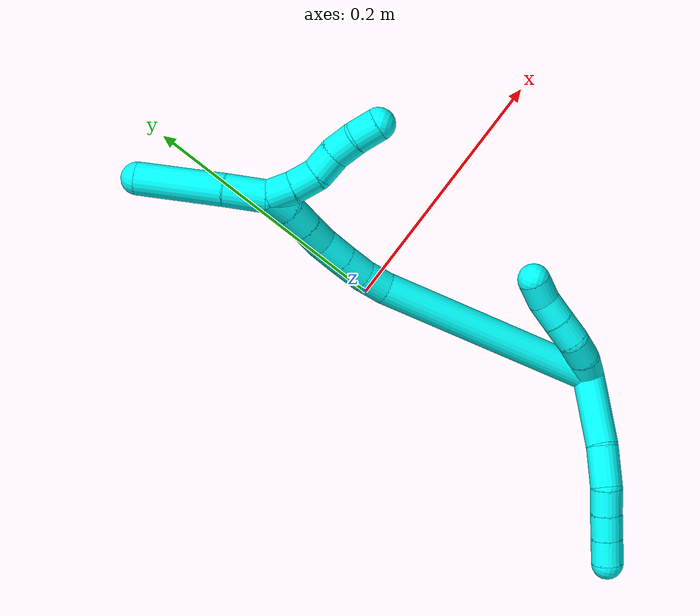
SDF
<sdf version="1.7">
 <world name="default">
  <model name="3">
   <static>0</static>
   <link name="3">
    <collision name="collision-cylinder-e_1_2_8">
     <pose>-0.022593 -0.011159 0.013337 0.69669 -0.914814 -0.353769</pose>
     <geometry><cylinder><radius>0.0125</radius><length>0.057022</length></cylinder></geometry>
     <surface>
      <friction><ode><mu>1.16</mu><mu2>1.16</mu2><slip1>0</slip1><slip2>0</slip2></ode></friction>
      <contact><ode><kp>1e+06</kp><kd>1</kd><max_vel>0</max_vel><min_depth>0.001</min_depth></ode></contact>
     </surface>
    </collision>
    <visual name="visual-cylinder-e_1_2_8">
     <pose>-0.022593 -0.011159 0.013337 0.69669 -0.914814 -0.353769</pose>
     <geometry><cylinder><radius>0.0125</radius><length>0.057022</length></cylinder></geometry>
     <material><ambient>0.003922 1 0.996078 1</ambient></material>
    </visual>
    <collision name="collision-cylinder-e_2_8_9">
     <pose>-0.057067 -0.031076 0.032882 0.954265 -0.835969 -0.451409</pose>
     <geometry><cylinder><radius>0.0125</radius><length>0.032024</length></cylinder></geometry>
     <surface>
      <friction><ode><mu>1.16</mu><mu2>1.16</mu2><slip1>0</slip1><slip2>0</slip2></ode></friction>
      <contact><ode><kp>1e+06</kp><kd>1</kd><max_vel>0</max_vel><min_depth>0.001</min_depth></ode></contact>
     </surface>
    </collision>
    <visual name="visual-cylinder-e_2_8_9">
     <pose>-0.057067 -0.031076 0.032882 0.954265 -0.835969 -0.451409</pose>
     <geometry><cylinder><radius>0.0125</radius><length>0.032024</length></cylinder></geometry>
     <material><ambient>0.003922 1 0.996078 1</ambient></material>
    </visual>
    <collision name="collision-cylinder-e_3_9_10">
     <pose>-0.074591 -0.048008 0.041844 1.24577 -0.579529 -0.421942</pose>
     <geometry><cylinder><radius>0.0125</radius><length>0.020615</length></cylinder></geometry>
     <surface>
      <friction><ode><mu>1.16</mu><mu2>1.16</mu2><slip1>0</slip1><slip2>0</slip2></ode></friction>
      <contact><ode><kp>1e+06</kp><kd>1</kd><max_vel>0</max_vel><min_depth>0.001</min_depth></ode></contact>
     </surface>
    </collision>
    <visual name="visual-cylinder-e_3_9_10">
     <pose>-0.074591 -0.048008 0.041844 1.24577 -0.579529 -0.421942</pose>
     <geometry><cylinder><radius>0.0125</radius><length>0.020615</length></cylinder></geometry>
     <material><ambient>0.003922 1 0.996078 1</ambient></material>
    </visual>
    <collision name="collision-cylinder-e_4_10_11">
     <pose>-0.085746 -0.064107 0.047512 1.21846 -0.578137 -0.409225</pose>
     <geometry><cylinder><radius>0.0125</radius><length>0.020168</length></cylinder></geometry>
     <surface>
      <friction><ode><mu>1.16</mu><mu2>1.16</mu2><slip1>0</slip1><slip2>0</slip2></ode></friction>
      <contact><ode><kp>1e+06</kp><kd>1</kd><max_vel>0</max_vel><min_depth>0.001</min_depth></ode></contact>
     </surface>
    </collision>
    <visual name="visual-cylinder-e_4_10_11">
     <pose>-0.085746 -0.064107 0.047512 1.21846 -0.578137 -0.409225</pose>
     <geometry><cylinder><radius>0.0125</radius><length>0.020168</length></cylinder></geometry>
     <material><ambient>0.003922 1 0.996078 1</ambient></material>
    </visual>
    <collision name="collision-cylinder-e_5_11_6">
     <pose>-0.096969 -0.079805 0.053375 1.20814 -0.602077 -0.422153</pose>
     <geometry><cylinder><radius>0.0125</radius><length>0.020172</length></cylinder></geometry>
     <surface>
      <friction><ode><mu>1.16</mu><mu2>1.16</mu2><slip1>0</slip1><slip2>0</slip2></ode></friction>
      <contact><ode><kp>1e+06</kp><kd>1</kd><max_vel>0</max_vel><min_depth>0.001</min_depth></ode></contact>
     </surface>
    </collision>
    <visual name="visual-cylinder-e_5_11_6">
     <pose>-0.096969 -0.079805 0.053375 1.20814 -0.602077 -0.422153</pose>
     <geometry><cylinder><radius>0.0125</radius><length>0.020172</length></cylinder></geometry>
     <material><ambient>0.003922 1 0.996078 1</ambient></material>
    </visual>
    <collision name="collision-cylinder-e_1_2_12">
     <pose>-0.000269 0.009423 -0.003335 -1.91099 -0.026934 0.038103</pose>
     <geometry><cylinder><radius>0.0125</radius><length>0.02</length></cylinder></geometry>
     <surface>
      <friction><ode><mu>1.16</mu><mu2>1.16</mu2><slip1>0</slip1><slip2>0</slip2></ode></friction>
      <contact><ode><kp>1e+06</kp><kd>1</kd><max_vel>0</max_vel><min_depth>0.001</min_depth></ode></contact>
     </surface>
    </collision>
    <visual name="visual-cylinder-e_1_2_12">
     <pose>-0.000269 0.009423 -0.003335 -1.91099 -0.026934 0.038103</pose>
     <geometry><cylinder><radius>0.0125</radius><length>0.02</length></cylinder></geometry>
     <material><ambient>0.003922 1 0.996078 1</ambient></material>
    </visual>
    <collision name="collision-cylinder-e_2_12_13">
     <pose>-0.000936 0.027269 -0.012049 -2.13909 -0.039706 0.072444</pose>
     <geometry><cylinder><radius>0.0125</radius><length>0.02</length></cylinder></geometry>
     <surface>
      <friction><ode><mu>1.16</mu><mu2>1.16</mu2><slip1>0</slip1><slip2>0</slip2></ode></friction>
      <contact><ode><kp>1e+06</kp><kd>1</kd><max_vel>0</max_vel><min_depth>0.001</min_depth></ode></contact>
     </surface>
    </collision>
    <visual name="visual-cylinder-e_2_12_13">
     <pose>-0.000936 0.027269 -0.012049 -2.13909 -0.039706 0.072444</pose>
     <geometry><cylinder><radius>0.0125</radius><length>0.02</length></cylinder></geometry>
     <material><ambient>0.003922 1 0.996078 1</ambient></material>
    </visual>
    <collision name="collision-cylinder-e_3_13_14">
     <pose>0.000365 0.042307 -0.02473 -2.40547 0.170569 -0.436329</pose>
     <geometry><cylinder><radius>0.0125</radius><length>0.02</length></cylinder></geometry>
     <surface>
      <friction><ode><mu>1.16</mu><mu2>1.16</mu2><slip1>0</slip1><slip2>0</slip2></ode></friction>
      <contact><ode><kp>1e+06</kp><kd>1</kd><max_vel>0</max_vel><min_depth>0.001</min_depth></ode></contact>
     </surface>
    </collision>
    <visual name="visual-cylinder-e_3_13_14">
     <pose>0.000365 0.042307 -0.02473 -2.40547 0.170569 -0.436329</pose>
     <geometry><cylinder><radius>0.0125</radius><length>0.02</length></cylinder></geometry>
     <material><ambient>0.003922 1 0.996078 1</ambient></material>
    </visual>
    <collision name="collision-cylinder-e_4_14_15">
     <pose>0.00426 0.055307 -0.03941 -2.42823 0.221581 -0.580256</pose>
     <geometry><cylinder><radius>0.0125</radius><length>0.02</length></cylinder></geometry>
     <surface>
      <friction><ode><mu>1.16</mu><mu2>1.16</mu2><slip1>0</slip1><slip2>0</slip2></ode></friction>
      <contact><ode><kp>1e+06</kp><kd>1</kd><max_vel>0</max_vel><min_depth>0.001</min_depth></ode></contact>
     </surface>
    </collision>
    <visual name="visual-cylinder-e_4_14_15">
     <pose>0.00426 0.055307 -0.03941 -2.42823 0.221581 -0.580256</pose>
     <geometry><cylinder><radius>0.0125</radius><length>0.02</length></cylinder></geometry>
     <material><ambient>0.003922 1 0.996078 1</ambient></material>
    </visual>
    <collision name="collision-cylinder-e_5_15_5">
     <pose>0.007788 0.069977 -0.052225 -2.15158 0.133403 -0.246234</pose>
     <geometry><cylinder><radius>0.0125</radius><length>0.02</length></cylinder></geometry>
     <surface>
      <friction><ode><mu>1.16</mu><mu2>1.16</mu2><slip1>0</slip1><slip2>0</slip2></ode></friction>
      <contact><ode><kp>1e+06</kp><kd>1</kd><max_vel>0</max_vel><min_depth>0.001</min_depth></ode></contact>
     </surface>
    </collision>
    <visual name="visual-cylinder-e_5_15_5">
     <pose>0.007788 0.069977 -0.052225 -2.15158 0.133403 -0.246234</pose>
     <geometry><cylinder><radius>0.0125</radius><length>0.02</length></cylinder></geometry>
     <material><ambient>0.003922 1 0.996078 1</ambient></material>
    </visual>
    <collision name="collision-cylinder-e_1_2_16">
     <pose>-0.011998 0.028671 -0.082095 -2.80559 -0.137109 0.769361</pose>
     <geometry><cylinder><radius>0.0125</radius><length>0.175562</length></cylinder></geometry>
     <surface>
      <friction><ode><mu>1.16</mu><mu2>1.16</mu2><slip1>0</slip1><slip2>0</slip2></ode></friction>
      <contact><ode><kp>1e+06</kp><kd>1</kd><max_vel>0</max_vel><min_depth>0.001</min_depth></ode></contact>
     </surface>
    </collision>
    <visual name="visual-cylinder-e_1_2_16">
     <pose>-0.011998 0.028671 -0.082095 -2.80559 -0.137109 0.769361</pose>
     <geometry><cylinder><radius>0.0125</radius><length>0.175562</length></cylinder></geometry>
     <material><ambient>0.003922 1 0.996078 1</ambient></material>
    </visual>
    <collision name="collision-cylinder-e_2_16_17">
     <pose>-0.025647 0.062536 -0.172871 -2.60243 -0.161747 0.570661</pose>
     <geometry><cylinder><radius>0.0125</radius><length>0.020501</length></cylinder></geometry>
     <surface>
      <friction><ode><mu>1.16</mu><mu2>1.16</mu2><slip1>0</slip1><slip2>0</slip2></ode></friction>
      <contact><ode><kp>1e+06</kp><kd>1</kd><max_vel>0</max_vel><min_depth>0.001</min_depth></ode></contact>
     </surface>
    </collision>
    <visual name="visual-cylinder-e_2_16_17">
     <pose>-0.025647 0.062536 -0.172871 -2.60243 -0.161747 0.570661</pose>
     <geometry><cylinder><radius>0.0125</radius><length>0.020501</length></cylinder></geometry>
     <material><ambient>0.003922 1 0.996078 1</ambient></material>
    </visual>
    <collision name="collision-cylinder-e_3_17_18">
     <pose>-0.028487 0.07438 -0.189824 -2.46444 -0.111661 0.314801</pose>
     <geometry><cylinder><radius>0.0125</radius><length>0.021357</length></cylinder></geometry>
     <surface>
      <friction><ode><mu>1.16</mu><mu2>1.16</mu2><slip1>0</slip1><slip2>0</slip2></ode></friction>
      <contact><ode><kp>1e+06</kp><kd>1</kd><max_vel>0</max_vel><min_depth>0.001</min_depth></ode></contact>
     </surface>
    </collision>
    <visual name="visual-cylinder-e_3_17_18">
     <pose>-0.028487 0.07438 -0.189824 -2.46444 -0.111661 0.314801</pose>
     <geometry><cylinder><radius>0.0125</radius><length>0.021357</length></cylinder></geometry>
     <material><ambient>0.003922 1 0.996078 1</ambient></material>
    </visual>
    <collision name="collision-cylinder-e_4_18_19">
     <pose>-0.0308 0.08814 -0.206617 -2.44624 -0.10078 0.276554</pose>
     <geometry><cylinder><radius>0.0125</radius><length>0.022313</length></cylinder></geometry>
     <surface>
      <friction><ode><mu>1.16</mu><mu2>1.16</mu2><slip1>0</slip1><slip2>0</slip2></ode></friction>
      <contact><ode><kp>1e+06</kp><kd>1</kd><max_vel>0</max_vel><min_depth>0.001</min_depth></ode></contact>
     </surface>
    </collision>
    <visual name="visual-cylinder-e_4_18_19">
     <pose>-0.0308 0.08814 -0.206617 -2.44624 -0.10078 0.276554</pose>
     <geometry><cylinder><radius>0.0125</radius><length>0.022313</length></cylinder></geometry>
     <material><ambient>0.003922 1 0.996078 1</ambient></material>
    </visual>
    <collision name="collision-cylinder-e_5_19_20">
     <pose>-0.03334 0.102936 -0.221453 -2.25854 -0.141645 0.297964</pose>
     <geometry><cylinder><radius>0.0125</radius><length>0.020092</length></cylinder></geometry>
     <surface>
      <friction><ode><mu>1.16</mu><mu2>1.16</mu2><slip1>0</slip1><slip2>0</slip2></ode></friction>
      <contact><ode><kp>1e+06</kp><kd>1</kd><max_vel>0</max_vel><min_depth>0.001</min_depth></ode></contact>
     </surface>
    </collision>
    <visual name="visual-cylinder-e_5_19_20">
     <pose>-0.03334 0.102936 -0.221453 -2.25854 -0.141645 0.297964</pose>
     <geometry><cylinder><radius>0.0125</radius><length>0.020092</length></cylinder></geometry>
     <material><ambient>0.003922 1 0.996078 1</ambient></material>
    </visual>
    <collision name="collision-cylinder-e_6_20_21">
     <pose>-0.036014 0.118266 -0.234171 -2.26813 -0.125249 0.26707</pose>
     <geometry><cylinder><radius>0.0125</radius><length>0.020105</length></cylinder></geometry>
     <surface>
      <friction><ode><mu>1.16</mu><mu2>1.16</mu2><slip1>0</slip1><slip2>0</slip2></ode></friction>
      <contact><ode><kp>1e+06</kp><kd>1</kd><max_vel>0</max_vel><min_depth>0.001</min_depth></ode></contact>
     </surface>
    </collision>
    <visual name="visual-cylinder-e_6_20_21">
     <pose>-0.036014 0.118266 -0.234171 -2.26813 -0.125249 0.26707</pose>
     <geometry><cylinder><radius>0.0125</radius><length>0.020105</length></cylinder></geometry>
     <material><ambient>0.003922 1 0.996078 1</ambient></material>
    </visual>
    <collision name="collision-cylinder-e_7_21_1">
     <pose>-0.039716 0.132171 -0.248027 -2.44281 -0.246254 0.654873</pose>
     <geometry><cylinder><radius>0.0125</radius><length>0.02007</length></cylinder></geometry>
     <surface>
      <friction><ode><mu>1.16</mu><mu2>1.16</mu2><slip1>0</slip1><slip2>0</slip2></ode></friction>
      <contact><ode><kp>1e+06</kp><kd>1</kd><max_vel>0</max_vel><min_depth>0.001</min_depth></ode></contact>
     </surface>
    </collision>
    <visual name="visual-cylinder-e_7_21_1">
     <pose>-0.039716 0.132171 -0.248027 -2.44281 -0.246254 0.654873</pose>
     <geometry><cylinder><radius>0.0125</radius><length>0.02007</length></cylinder></geometry>
     <material><ambient>0.003922 1 0.996078 1</ambient></material>
    </visual>
    <collision name="collision-cylinder-e_1_1_22">
     <pose>-0.037623 0.142269 -0.247437 -0.445153 0.471222 -0.108561</pose>
     <geometry><cylinder><radius>0.0125</radius><length>0.02</length></cylinder></geometry>
     <surface>
      <friction><ode><mu>1.16</mu><mu2>1.16</mu2><slip1>0</slip1><slip2>0</slip2></ode></friction>
      <contact><ode><kp>1e+06</kp><kd>1</kd><max_vel>0</max_vel><min_depth>0.001</min_depth></ode></contact>
     </surface>
    </collision>
    <visual name="visual-cylinder-e_1_1_22">
     <pose>-0.037623 0.142269 -0.247437 -0.445153 0.471222 -0.108561</pose>
     <geometry><cylinder><radius>0.0125</radius><length>0.02</length></cylinder></geometry>
     <material><ambient>0.003922 1 0.996078 1</ambient></material>
    </visual>
    <collision name="collision-cylinder-e_2_22_23">
     <pose>-0.027999 0.151007 -0.232314 -0.6055 0.533274 -0.17022</pose>
     <geometry><cylinder><radius>0.0125</radius><length>0.02</length></cylinder></geometry>
     <surface>
      <friction><ode><mu>1.16</mu><mu2>1.16</mu2><slip1>0</slip1><slip2>0</slip2></ode></friction>
      <contact><ode><kp>1e+06</kp><kd>1</kd><max_vel>0</max_vel><min_depth>0.001</min_depth></ode></contact>
     </surface>
    </collision>
    <visual name="visual-cylinder-e_2_22_23">
     <pose>-0.027999 0.151007 -0.232314 -0.6055 0.533274 -0.17022</pose>
     <geometry><cylinder><radius>0.0125</radius><length>0.02</length></cylinder></geometry>
     <material><ambient>0.003922 1 0.996078 1</ambient></material>
    </visual>
    <collision name="collision-cylinder-e_3_23_24">
     <pose>-0.017016 0.162705 -0.220875 -1.00059 0.631008 -0.353167</pose>
     <geometry><cylinder><radius>0.0125</radius><length>0.02</length></cylinder></geometry>
     <surface>
      <friction><ode><mu>1.16</mu><mu2>1.16</mu2><slip1>0</slip1><slip2>0</slip2></ode></friction>
      <contact><ode><kp>1e+06</kp><kd>1</kd><max_vel>0</max_vel><min_depth>0.001</min_depth></ode></contact>
     </surface>
    </collision>
    <visual name="visual-cylinder-e_3_23_24">
     <pose>-0.017016 0.162705 -0.220875 -1.00059 0.631008 -0.353167</pose>
     <geometry><cylinder><radius>0.0125</radius><length>0.02</length></cylinder></geometry>
     <material><ambient>0.003922 1 0.996078 1</ambient></material>
    </visual>
    <collision name="collision-cylinder-e_4_24_25">
     <pose>-0.007327 0.17638 -0.210326 -0.837942 0.388645 -0.174844</pose>
     <geometry><cylinder><radius>0.0125</radius><length>0.02</length></cylinder></geometry>
     <surface>
      <friction><ode><mu>1.16</mu><mu2>1.16</mu2><slip1>0</slip1><slip2>0</slip2></ode></friction>
      <contact><ode><kp>1e+06</kp><kd>1</kd><max_vel>0</max_vel><min_depth>0.001</min_depth></ode></contact>
     </surface>
    </collision>
    <visual name="visual-cylinder-e_4_24_25">
     <pose>-0.007327 0.17638 -0.210326 -0.837942 0.388645 -0.174844</pose>
     <geometry><cylinder><radius>0.0125</radius><length>0.02</length></cylinder></geometry>
     <material><ambient>0.003922 1 0.996078 1</ambient></material>
    </visual>
    <collision name="collision-cylinder-e_5_25_4">
     <pose>0.001363 0.188572 -0.197224 -0.655437 0.512245 -0.177595</pose>
     <geometry><cylinder><radius>0.0125</radius><length>0.02</length></cylinder></geometry>
     <surface>
      <friction><ode><mu>1.16</mu><mu2>1.16</mu2><slip1>0</slip1><slip2>0</slip2></ode></friction>
      <contact><ode><kp>1e+06</kp><kd>1</kd><max_vel>0</max_vel><min_depth>0.001</min_depth></ode></contact>
     </surface>
    </collision>
    <visual name="visual-cylinder-e_5_25_4">
     <pose>0.001363 0.188572 -0.197224 -0.655437 0.512245 -0.177595</pose>
     <geometry><cylinder><radius>0.0125</radius><length>0.02</length></cylinder></geometry>
     <material><ambient>0.003922 1 0.996078 1</ambient></material>
    </visual>
    <collision name="collision-cylinder-e_1_1_26">
     <pose>-0.04453 0.137741 -0.271571 3.09868 -0.145912 -2.57035</pose>
     <geometry><cylinder><radius>0.0125</radius><length>0.032562</length></cylinder></geometry>
     <surface>
      <friction><ode><mu>1.16</mu><mu2>1.16</mu2><slip1>0</slip1><slip2>0</slip2></ode></friction>
      <contact><ode><kp>1e+06</kp><kd>1</kd><max_vel>0</max_vel><min_depth>0.001</min_depth></ode></contact>
     </surface>
    </collision>
    <visual name="visual-cylinder-e_1_1_26">
     <pose>-0.04453 0.137741 -0.271571 3.09868 -0.145912 -2.57035</pose>
     <geometry><cylinder><radius>0.0125</radius><length>0.032562</length></cylinder></geometry>
     <material><ambient>0.003922 1 0.996078 1</ambient></material>
    </visual>
    <collision name="collision-cylinder-e_2_26_3">
     <pose>-0.050441 0.133309 -0.320987 3.02979 -0.105296 -1.51076</pose>
     <geometry><cylinder><radius>0.0125</radius><length>0.067438</length></cylinder></geometry>
     <surface>
      <friction><ode><mu>1.16</mu><mu2>1.16</mu2><slip1>0</slip1><slip2>0</slip2></ode></friction>
      <contact><ode><kp>1e+06</kp><kd>1</kd><max_vel>0</max_vel><min_depth>0.001</min_depth></ode></contact>
     </surface>
    </collision>
    <visual name="visual-cylinder-e_2_26_3">
     <pose>-0.050441 0.133309 -0.320987 3.02979 -0.105296 -1.51076</pose>
     <geometry><cylinder><radius>0.0125</radius><length>0.067438</length></cylinder></geometry>
     <material><ambient>0.003922 1 0.996078 1</ambient></material>
    </visual>
    <collision name="collision-sphere-3">
     <pose>-0.053985 0.129568 -0.35431 0 -0 0</pose>
     <geometry><sphere><radius>0.0125</radius></sphere></geometry>
     <surface>
      <friction><ode><mu>1.16</mu><mu2>1.16</mu2><slip1>0</slip1><slip2>0</slip2></ode></friction>
      <contact><ode><kp>1e+06</kp><kd>1</kd><max_vel>0</max_vel><min_depth>0.001</min_depth></ode></contact>
     </surface>
    </collision>
    <visual name="visual-sphere-3">
     <pose>-0.053985 0.129568 -0.35431 0 -0 0</pose>
     <geometry><sphere><radius>0.0125</radius></sphere></geometry>
     <material><ambient>0.003922 1 0.996078 1</ambient></material>
    </visual>
    <collision name="collision-sphere-26">
     <pose>-0.046897 0.13705 -0.287664 0 -0 0</pose>
     <geometry><sphere><radius>0.0125</radius></sphere></geometry>
     <surface>
      <friction><ode><mu>1.16</mu><mu2>1.16</mu2><slip1>0</slip1><slip2>0</slip2></ode></friction>
      <contact><ode><kp>1e+06</kp><kd>1</kd><max_vel>0</max_vel><min_depth>0.001</min_depth></ode></contact>
     </surface>
    </collision>
    <visual name="visual-sphere-26">
     <pose>-0.046897 0.13705 -0.287664 0 -0 0</pose>
     <geometry><sphere><radius>0.0125</radius></sphere></geometry>
     <material><ambient>0.003922 1 0.996078 1</ambient></material>
    </visual>
    <collision name="collision-sphere-4">
     <pose>0.006265 0.193884 -0.190314 0 -0 0</pose>
     <geometry><sphere><radius>0.0125</radius></sphere></geometry>
     <surface>
      <friction><ode><mu>1.16</mu><mu2>1.16</mu2><slip1>0</slip1><slip2>0</slip2></ode></friction>
      <contact><ode><kp>1e+06</kp><kd>1</kd><max_vel>0</max_vel><min_depth>0.001</min_depth></ode></contact>
     </surface>
    </collision>
    <visual name="visual-sphere-4">
     <pose>0.006265 0.193884 -0.190314 0 -0 0</pose>
     <geometry><sphere><radius>0.0125</radius></sphere></geometry>
     <material><ambient>0.003922 1 0.996078 1</ambient></material>
    </visual>
    <collision name="collision-sphere-25">
     <pose>-0.003538 0.183259 -0.204134 0 -0 0</pose>
     <geometry><sphere><radius>0.0125</radius></sphere></geometry>
     <surface>
      <friction><ode><mu>1.16</mu><mu2>1.16</mu2><slip1>0</slip1><slip2>0</slip2></ode></friction>
      <contact><ode><kp>1e+06</kp><kd>1</kd><max_vel>0</max_vel><min_depth>0.001</min_depth></ode></contact>
     </surface>
    </collision>
    <visual name="visual-sphere-25">
     <pose>-0.003538 0.183259 -0.204134 0 -0 0</pose>
     <geometry><sphere><radius>0.0125</radius></sphere></geometry>
     <material><ambient>0.003922 1 0.996078 1</ambient></material>
    </visual>
    <collision name="collision-sphere-24">
     <pose>-0.011117 0.169502 -0.216517 0 -0 0</pose>
     <geometry><sphere><radius>0.0125</radius></sphere></geometry>
     <surface>
      <friction><ode><mu>1.16</mu><mu2>1.16</mu2><slip1>0</slip1><slip2>0</slip2></ode></friction>
      <contact><ode><kp>1e+06</kp><kd>1</kd><max_vel>0</max_vel><min_depth>0.001</min_depth></ode></contact>
     </surface>
    </collision>
    <visual name="visual-sphere-24">
     <pose>-0.011117 0.169502 -0.216517 0 -0 0</pose>
     <geometry><sphere><radius>0.0125</radius></sphere></geometry>
     <material><ambient>0.003922 1 0.996078 1</ambient></material>
    </visual>
    <collision name="collision-sphere-23">
     <pose>-0.022916 0.155908 -0.225234 0 -0 0</pose>
     <geometry><sphere><radius>0.0125</radius></sphere></geometry>
     <surface>
      <friction><ode><mu>1.16</mu><mu2>1.16</mu2><slip1>0</slip1><slip2>0</slip2></ode></friction>
      <contact><ode><kp>1e+06</kp><kd>1</kd><max_vel>0</max_vel><min_depth>0.001</min_depth></ode></contact>
     </surface>
    </collision>
    <visual name="visual-sphere-23">
     <pose>-0.022916 0.155908 -0.225234 0 -0 0</pose>
     <geometry><sphere><radius>0.0125</radius></sphere></geometry>
     <material><ambient>0.003922 1 0.996078 1</ambient></material>
    </visual>
    <collision name="collision-sphere-22">
     <pose>-0.033083 0.146105 -0.239395 0 -0 0</pose>
     <geometry><sphere><radius>0.0125</radius></sphere></geometry>
     <surface>
      <friction><ode><mu>1.16</mu><mu2>1.16</mu2><slip1>0</slip1><slip2>0</slip2></ode></friction>
      <contact><ode><kp>1e+06</kp><kd>1</kd><max_vel>0</max_vel><min_depth>0.001</min_depth></ode></contact>
     </surface>
    </collision>
    <visual name="visual-sphere-22">
     <pose>-0.033083 0.146105 -0.239395 0 -0 0</pose>
     <geometry><sphere><radius>0.0125</radius></sphere></geometry>
     <material><ambient>0.003922 1 0.996078 1</ambient></material>
    </visual>
    <collision name="collision-sphere-1">
     <pose>-0.042163 0.138432 -0.255478 0 -0 0</pose>
     <geometry><sphere><radius>0.0125</radius></sphere></geometry>
     <surface>
      <friction><ode><mu>1.16</mu><mu2>1.16</mu2><slip1>0</slip1><slip2>0</slip2></ode></friction>
      <contact><ode><kp>1e+06</kp><kd>1</kd><max_vel>0</max_vel><min_depth>0.001</min_depth></ode></contact>
     </surface>
    </collision>
    <visual name="visual-sphere-1">
     <pose>-0.042163 0.138432 -0.255478 0 -0 0</pose>
     <geometry><sphere><radius>0.0125</radius></sphere></geometry>
     <material><ambient>0.003922 1 0.996078 1</ambient></material>
    </visual>
    <collision name="collision-sphere-21">
     <pose>-0.03727 0.125911 -0.240576 0 -0 0</pose>
     <geometry><sphere><radius>0.0125</radius></sphere></geometry>
     <surface>
      <friction><ode><mu>1.16</mu><mu2>1.16</mu2><slip1>0</slip1><slip2>0</slip2></ode></friction>
      <contact><ode><kp>1e+06</kp><kd>1</kd><max_vel>0</max_vel><min_depth>0.001</min_depth></ode></contact>
     </surface>
    </collision>
    <visual name="visual-sphere-21">
     <pose>-0.03727 0.125911 -0.240576 0 -0 0</pose>
     <geometry><sphere><radius>0.0125</radius></sphere></geometry>
     <material><ambient>0.003922 1 0.996078 1</ambient></material>
    </visual>
    <collision name="collision-sphere-6">
     <pose>-0.102681 -0.087577 0.056324 0 -0 0</pose>
     <geometry><sphere><radius>0.0125</radius></sphere></geometry>
     <surface>
      <friction><ode><mu>1.16</mu><mu2>1.16</mu2><slip1>0</slip1><slip2>0</slip2></ode></friction>
      <contact><ode><kp>1e+06</kp><kd>1</kd><max_vel>0</max_vel><min_depth>0.001</min_depth></ode></contact>
     </surface>
    </collision>
    <visual name="visual-sphere-6">
     <pose>-0.102681 -0.087577 0.056324 0 -0 0</pose>
     <geometry><sphere><radius>0.0125</radius></sphere></geometry>
     <material><ambient>0.003922 1 0.996078 1</ambient></material>
    </visual>
    <collision name="collision-sphere-11">
     <pose>-0.091257 -0.072033 0.050426 0 -0 0</pose>
     <geometry><sphere><radius>0.0125</radius></sphere></geometry>
     <surface>
      <friction><ode><mu>1.16</mu><mu2>1.16</mu2><slip1>0</slip1><slip2>0</slip2></ode></friction>
      <contact><ode><kp>1e+06</kp><kd>1</kd><max_vel>0</max_vel><min_depth>0.001</min_depth></ode></contact>
     </surface>
    </collision>
    <visual name="visual-sphere-11">
     <pose>-0.091257 -0.072033 0.050426 0 -0 0</pose>
     <geometry><sphere><radius>0.0125</radius></sphere></geometry>
     <material><ambient>0.003922 1 0.996078 1</ambient></material>
    </visual>
    <collision name="collision-sphere-10">
     <pose>-0.080236 -0.056181 0.044598 0 -0 0</pose>
     <geometry><sphere><radius>0.0125</radius></sphere></geometry>
     <surface>
      <friction><ode><mu>1.16</mu><mu2>1.16</mu2><slip1>0</slip1><slip2>0</slip2></ode></friction>
      <contact><ode><kp>1e+06</kp><kd>1</kd><max_vel>0</max_vel><min_depth>0.001</min_depth></ode></contact>
     </surface>
    </collision>
    <visual name="visual-sphere-10">
     <pose>-0.080236 -0.056181 0.044598 0 -0 0</pose>
     <geometry><sphere><radius>0.0125</radius></sphere></geometry>
     <material><ambient>0.003922 1 0.996078 1</ambient></material>
    </visual>
    <collision name="collision-sphere-9">
     <pose>-0.068947 -0.039835 0.039089 0 -0 0</pose>
     <geometry><sphere><radius>0.0125</radius></sphere></geometry>
     <surface>
      <friction><ode><mu>1.16</mu><mu2>1.16</mu2><slip1>0</slip1><slip2>0</slip2></ode></friction>
      <contact><ode><kp>1e+06</kp><kd>1</kd><max_vel>0</max_vel><min_depth>0.001</min_depth></ode></contact>
     </surface>
    </collision>
    <visual name="visual-sphere-9">
     <pose>-0.068947 -0.039835 0.039089 0 -0 0</pose>
     <geometry><sphere><radius>0.0125</radius></sphere></geometry>
     <material><ambient>0.003922 1 0.996078 1</ambient></material>
    </visual>
    <collision name="collision-sphere-2">
     <geometry><sphere><radius>0.0125</radius></sphere></geometry>
     <surface>
      <friction><ode><mu>1.16</mu><mu2>1.16</mu2><slip1>0</slip1><slip2>0</slip2></ode></friction>
      <contact><ode><kp>1e+06</kp><kd>1</kd><max_vel>0</max_vel><min_depth>0.001</min_depth></ode></contact>
     </surface>
    </collision>
    <visual name="visual-sphere-2">
     <geometry><sphere><radius>0.0125</radius></sphere></geometry>
     <material><ambient>0.003922 1 0.996078 1</ambient></material>
    </visual>
    <collision name="collision-sphere-19">
     <pose>-0.031922 0.095251 -0.21514 0 -0 0</pose>
     <geometry><sphere><radius>0.0125</radius></sphere></geometry>
     <surface>
      <friction><ode><mu>1.16</mu><mu2>1.16</mu2><slip1>0</slip1><slip2>0</slip2></ode></friction>
      <contact><ode><kp>1e+06</kp><kd>1</kd><max_vel>0</max_vel><min_depth>0.001</min_depth></ode></contact>
     </surface>
    </collision>
    <visual name="visual-sphere-19">
     <pose>-0.031922 0.095251 -0.21514 0 -0 0</pose>
     <geometry><sphere><radius>0.0125</radius></sphere></geometry>
     <material><ambient>0.003922 1 0.996078 1</ambient></material>
    </visual>
    <collision name="collision-sphere-8">
     <pose>-0.045187 -0.022318 0.026675 0 -0 0</pose>
     <geometry><sphere><radius>0.0125</radius></sphere></geometry>
     <surface>
      <friction><ode><mu>1.16</mu><mu2>1.16</mu2><slip1>0</slip1><slip2>0</slip2></ode></friction>
      <contact><ode><kp>1e+06</kp><kd>1</kd><max_vel>0</max_vel><min_depth>0.001</min_depth></ode></contact>
     </surface>
    </collision>
    <visual name="visual-sphere-8">
     <pose>-0.045187 -0.022318 0.026675 0 -0 0</pose>
     <geometry><sphere><radius>0.0125</radius></sphere></geometry>
     <material><ambient>0.003922 1 0.996078 1</ambient></material>
    </visual>
    <collision name="collision-sphere-12">
     <pose>-0.000539 0.018847 -0.006671 0 -0 0</pose>
     <geometry><sphere><radius>0.0125</radius></sphere></geometry>
     <surface>
      <friction><ode><mu>1.16</mu><mu2>1.16</mu2><slip1>0</slip1><slip2>0</slip2></ode></friction>
      <contact><ode><kp>1e+06</kp><kd>1</kd><max_vel>0</max_vel><min_depth>0.001</min_depth></ode></contact>
     </surface>
    </collision>
    <visual name="visual-sphere-12">
     <pose>-0.000539 0.018847 -0.006671 0 -0 0</pose>
     <geometry><sphere><radius>0.0125</radius></sphere></geometry>
     <material><ambient>0.003922 1 0.996078 1</ambient></material>
    </visual>
    <collision name="collision-sphere-13">
     <pose>-0.001333 0.03569 -0.017426 0 -0 0</pose>
     <geometry><sphere><radius>0.0125</radius></sphere></geometry>
     <surface>
      <friction><ode><mu>1.16</mu><mu2>1.16</mu2><slip1>0</slip1><slip2>0</slip2></ode></friction>
      <contact><ode><kp>1e+06</kp><kd>1</kd><max_vel>0</max_vel><min_depth>0.001</min_depth></ode></contact>
     </surface>
    </collision>
    <visual name="visual-sphere-13">
     <pose>-0.001333 0.03569 -0.017426 0 -0 0</pose>
     <geometry><sphere><radius>0.0125</radius></sphere></geometry>
     <material><ambient>0.003922 1 0.996078 1</ambient></material>
    </visual>
    <collision name="collision-sphere-14">
     <pose>0.002062 0.048924 -0.032033 0 -0 0</pose>
     <geometry><sphere><radius>0.0125</radius></sphere></geometry>
     <surface>
      <friction><ode><mu>1.16</mu><mu2>1.16</mu2><slip1>0</slip1><slip2>0</slip2></ode></friction>
      <contact><ode><kp>1e+06</kp><kd>1</kd><max_vel>0</max_vel><min_depth>0.001</min_depth></ode></contact>
     </surface>
    </collision>
    <visual name="visual-sphere-14">
     <pose>0.002062 0.048924 -0.032033 0 -0 0</pose>
     <geometry><sphere><radius>0.0125</radius></sphere></geometry>
     <material><ambient>0.003922 1 0.996078 1</ambient></material>
    </visual>
    <collision name="collision-sphere-15">
     <pose>0.006458 0.061691 -0.046786 0 -0 0</pose>
     <geometry><sphere><radius>0.0125</radius></sphere></geometry>
     <surface>
      <friction><ode><mu>1.16</mu><mu2>1.16</mu2><slip1>0</slip1><slip2>0</slip2></ode></friction>
      <contact><ode><kp>1e+06</kp><kd>1</kd><max_vel>0</max_vel><min_depth>0.001</min_depth></ode></contact>
     </surface>
    </collision>
    <visual name="visual-sphere-15">
     <pose>0.006458 0.061691 -0.046786 0 -0 0</pose>
     <geometry><sphere><radius>0.0125</radius></sphere></geometry>
     <material><ambient>0.003922 1 0.996078 1</ambient></material>
    </visual>
    <collision name="collision-sphere-5">
     <pose>0.009118 0.078263 -0.057663 0 -0 0</pose>
     <geometry><sphere><radius>0.0125</radius></sphere></geometry>
     <surface>
      <friction><ode><mu>1.16</mu><mu2>1.16</mu2><slip1>0</slip1><slip2>0</slip2></ode></friction>
      <contact><ode><kp>1e+06</kp><kd>1</kd><max_vel>0</max_vel><min_depth>0.001</min_depth></ode></contact>
     </surface>
    </collision>
    <visual name="visual-sphere-5">
     <pose>0.009118 0.078263 -0.057663 0 -0 0</pose>
     <geometry><sphere><radius>0.0125</radius></sphere></geometry>
     <material><ambient>0.003922 1 0.996078 1</ambient></material>
    </visual>
    <collision name="collision-sphere-16">
     <pose>-0.023996 0.057342 -0.16419 0 -0 0</pose>
     <geometry><sphere><radius>0.0125</radius></sphere></geometry>
     <surface>
      <friction><ode><mu>1.16</mu><mu2>1.16</mu2><slip1>0</slip1><slip2>0</slip2></ode></friction>
      <contact><ode><kp>1e+06</kp><kd>1</kd><max_vel>0</max_vel><min_depth>0.001</min_depth></ode></contact>
     </surface>
    </collision>
    <visual name="visual-sphere-16">
     <pose>-0.023996 0.057342 -0.16419 0 -0 0</pose>
     <geometry><sphere><radius>0.0125</radius></sphere></geometry>
     <material><ambient>0.003922 1 0.996078 1</ambient></material>
    </visual>
    <collision name="collision-sphere-17">
     <pose>-0.027297 0.06773 -0.181553 0 -0 0</pose>
     <geometry><sphere><radius>0.0125</radius></sphere></geometry>
     <surface>
      <friction><ode><mu>1.16</mu><mu2>1.16</mu2><slip1>0</slip1><slip2>0</slip2></ode></friction>
      <contact><ode><kp>1e+06</kp><kd>1</kd><max_vel>0</max_vel><min_depth>0.001</min_depth></ode></contact>
     </surface>
    </collision>
    <visual name="visual-sphere-17">
     <pose>-0.027297 0.06773 -0.181553 0 -0 0</pose>
     <geometry><sphere><radius>0.0125</radius></sphere></geometry>
     <material><ambient>0.003922 1 0.996078 1</ambient></material>
    </visual>
    <collision name="collision-sphere-18">
     <pose>-0.029677 0.081029 -0.198094 0 -0 0</pose>
     <geometry><sphere><radius>0.0125</radius></sphere></geometry>
     <surface>
      <friction><ode><mu>1.16</mu><mu2>1.16</mu2><slip1>0</slip1><slip2>0</slip2></ode></friction>
      <contact><ode><kp>1e+06</kp><kd>1</kd><max_vel>0</max_vel><min_depth>0.001</min_depth></ode></contact>
     </surface>
    </collision>
    <visual name="visual-sphere-18">
     <pose>-0.029677 0.081029 -0.198094 0 -0 0</pose>
     <geometry><sphere><radius>0.0125</radius></sphere></geometry>
     <material><ambient>0.003922 1 0.996078 1</ambient></material>
    </visual>
    <collision name="collision-sphere-20">
     <pose>-0.034759 0.11062 -0.227766 0 -0 0</pose>
     <geometry><sphere><radius>0.0125</radius></sphere></geometry>
     <surface>
      <friction><ode><mu>1.16</mu><mu2>1.16</mu2><slip1>0</slip1><slip2>0</slip2></ode></friction>
      <contact><ode><kp>1e+06</kp><kd>1</kd><max_vel>0</max_vel><min_depth>0.001</min_depth></ode></contact>
     </surface>
    </collision>
    <visual name="visual-sphere-20">
     <pose>-0.034759 0.11062 -0.227766 0 -0 0</pose>
     <geometry><sphere><radius>0.0125</radius></sphere></geometry>
     <material><ambient>0.003922 1 0.996078 1</ambient></material>
    </visual>
    <inertial>
     <pose>-0.02781 0.060567 -0.121778 0 -0 0</pose>
     <mass>0.75</mass>
     <inertia>
      <ixx>0.000633</ixx>
      <ixy>0</ixy>
      <ixz>0</ixz>
      <iyy>1.7e-05</iyy>
      <iyz>0</iyz>
      <izz>-8.9e-05</izz>
     </inertia>
    </inertial>
   </link>
   <pose>0.054102 -0.177862 0.011475 1.37196 0.692211 0.233461</pose>
  </model>
 </world>
</sdf>
